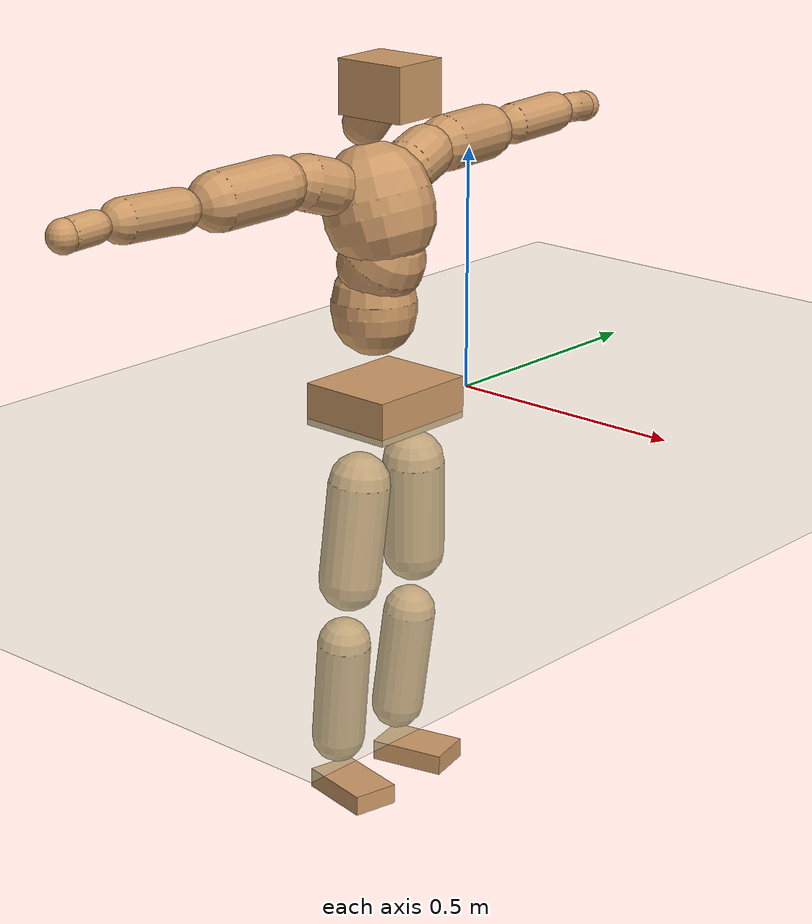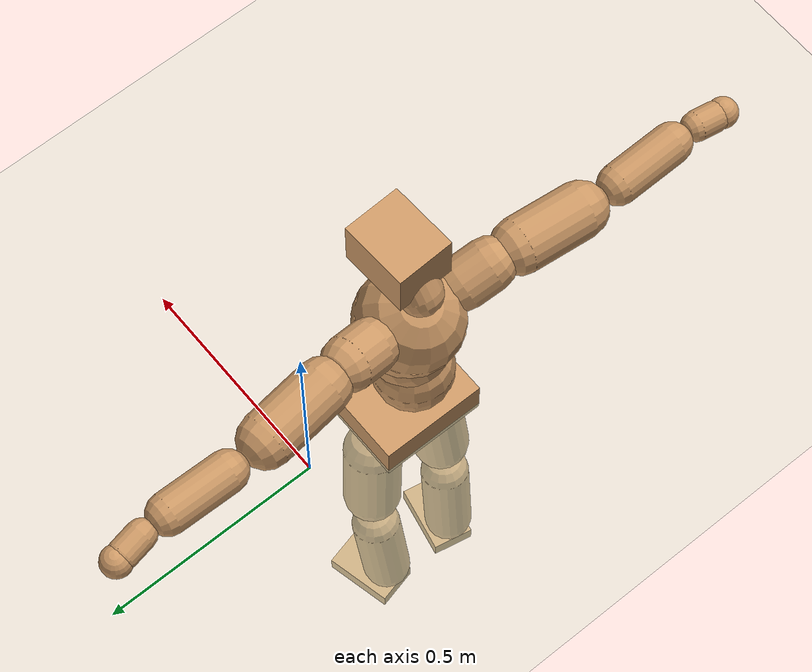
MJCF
<mujoco model="humanoid">
  <compiler coordinate="local" angle="radian"/>
  <default>
    <joint damping="0.0" armature="0.01" stiffness="0.0" limited="true"/>
    <geom conaffinity="1" condim="3" contype="7" margin="0.001" rgba="0.8 0.6 .4 1"/>
  </default>
  <asset>
    <texture type="skybox" builtin="gradient" rgb1=".4 .5 .6" rgb2="0 0 0" width="100" height="100"/>
    <texture builtin="flat" height="1278" mark="cross" markrgb="1 1 1" name="texgeom" random="0.01" rgb1="0.8 0.6 0.4" rgb2="0.8 0.6 0.4" type="cube" width="127"/>
    <texture builtin="checker" height="100" name="texplane" rgb1="0 0 0" rgb2="0.8 0.8 0.8" type="2d" width="100"/>
    <material name="MatPlane" reflectance="0.5" shininess="1" specular="1" texrepeat="60 60" texture="texplane"/>
    <material name="geom" texture="texgeom" texuniform="true"/>
  </asset>
  <worldbody>
    <light cutoff="100" diffuse="1 1 1" dir="-0 0 -1.3" directional="true" exponent="1" pos="0 0 1.3" specular=".1 .1 .1"/>
    <geom conaffinity="1" condim="3" name="floor" pos="0 0 0" rgba="0.8 0.9 0.8 1" size="100 100 .2" type="plane" material="MatPlane"/>
    <body name="Pelvis" pos="-0.0015 -0.2408 0.0412">
      <freejoint name="Pelvis"/>
      <geom type="box" contype="1" conaffinity="1" density="500" pos="-0.0050 0.0000 -0.0132" size="0.0998 0.1198 0.0435" quat="1.0000 0.0000 0.0000 -0.0013" name="Pelvis"/>
      <body name="L_Hip" pos="-0.0001 0.0784 -0.0944">
        <joint name="L_Hip_x" type="hinge" pos="0 0 0" axis="1 0 0" stiffness="800" damping="80" armature="0.02" range="-180.0000 180.0000"/>
        <joint name="L_Hip_y" type="hinge" pos="0 0 0" axis="0 1 0" stiffness="800" damping="80" armature="0.02" range="-180.0000 180.0000"/>
        <joint name="L_Hip_z" type="hinge" pos="0 0 0" axis="0 0 1" stiffness="800" damping="80" armature="0.02" range="-180.0000 180.0000"/>
        <geom type="capsule" contype="1" conaffinity="1" density="500" fromto="-0.0035 0.0044 -0.0674 -0.0142 0.0177 -0.2697" size="0.0632" name="L_Hip"/>
        <body name="L_Knee" pos="-0.0177 0.0221 -0.3372">
          <joint name="L_Knee_x" type="hinge" pos="0 0 0" axis="1 0 0" stiffness="800" damping="80" armature="0.02" range="-180.0000 180.0000"/>
          <joint name="L_Knee_y" type="hinge" pos="0 0 0" axis="0 1 0" stiffness="800" damping="80" armature="0.02" range="-180.0000 180.0000"/>
          <joint name="L_Knee_z" type="hinge" pos="0 0 0" axis="0 0 1" stiffness="800" damping="80" armature="0.02" range="-180.0000 180.0000"/>
          <geom type="capsule" contype="1" conaffinity="1" density="500" fromto="-0.0091 -0.0022 -0.0722 -0.0363 -0.0089 -0.2888" size="0.0542" name="L_Knee"/>
          <body name="L_Ankle" pos="-0.0454 -0.0111 -0.361">
            <joint name="L_Ankle_x" type="hinge" pos="0 0 0" axis="1 0 0" stiffness="800" damping="80" armature="0.02" range="-180.0000 180.0000"/>
            <joint name="L_Ankle_y" type="hinge" pos="0 0 0" axis="0 1 0" stiffness="800" damping="80" armature="0.02" range="-180.0000 180.0000"/>
            <joint name="L_Ankle_z" type="hinge" pos="0 0 0" axis="0 0 1" stiffness="800" damping="80" armature="0.02" range="-180.0000 180.0000"/>
            <geom type="box" contype="1" conaffinity="1" density="500" pos="0.0552 0.0131 -0.0268" size="0.0784 0.0486 0.0206" quat="0.9932 0.0000 0.0000 0.1164" name="L_Ankle"/>
            <body name="L_Toe" pos="0.1104 0.0262 -0.0535">
              <joint name="L_Toe_x" type="hinge" pos="0 0 0" axis="1 0 0" stiffness="500" damping="50" armature="0.02" range="-180.0000 180.0000"/>
              <joint name="L_Toe_y" type="hinge" pos="0 0 0" axis="0 1 0" stiffness="500" damping="50" armature="0.02" range="-180.0000 180.0000"/>
              <joint name="L_Toe_z" type="hinge" pos="0 0 0" axis="0 0 1" stiffness="500" damping="50" armature="0.02" range="-180.0000 180.0000"/>
              <geom type="box" contype="1" conaffinity="1" density="500" pos="0.0000 0.0000 0.0266" size="0.0011 0.0024 0.001" quat="0.9924 0.0000 0.0000 0.1228" name="L_Toe"/>
            </body>
          </body>
        </body>
      </body>
      <body name="R_Hip" pos="0.0031 -0.0758 -0.0956">
        <joint name="R_Hip_x" type="hinge" pos="0 0 0" axis="1 0 0" stiffness="800" damping="80" armature="0.02" range="-180.0000 180.0000"/>
        <joint name="R_Hip_y" type="hinge" pos="0 0 0" axis="0 1 0" stiffness="800" damping="80" armature="0.02" range="-180.0000 180.0000"/>
        <joint name="R_Hip_z" type="hinge" pos="0 0 0" axis="0 0 1" stiffness="800" damping="80" armature="0.02" range="-180.0000 180.0000"/>
        <geom type="capsule" contype="1" conaffinity="1" density="500" fromto="-0.0038 -0.0060 -0.0686 -0.0151 -0.0238 -0.2745" size="0.0625" name="R_Hip"/>
        <body name="R_Knee" pos="-0.0189 -0.0298 -0.3432">
          <joint name="R_Knee_x" type="hinge" pos="0 0 0" axis="1 0 0" stiffness="800" damping="80" armature="0.02" range="-180.0000 180.0000"/>
          <joint name="R_Knee_y" type="hinge" pos="0 0 0" axis="0 1 0" stiffness="800" damping="80" armature="0.02" range="-180.0000 180.0000"/>
          <joint name="R_Knee_z" type="hinge" pos="0 0 0" axis="0 0 1" stiffness="800" damping="80" armature="0.02" range="-180.0000 180.0000"/>
          <geom type="capsule" contype="1" conaffinity="1" density="500" fromto="-0.0087 0.0026 -0.0725 -0.0347 0.0104 -0.2900" size="0.0543" name="R_Knee"/>
          <body name="R_Ankle" pos="-0.0434 0.013 -0.3625">
            <joint name="R_Ankle_x" type="hinge" pos="0 0 0" axis="1 0 0" stiffness="800" damping="80" armature="0.02" range="-180.0000 180.0000"/>
            <joint name="R_Ankle_y" type="hinge" pos="0 0 0" axis="0 1 0" stiffness="800" damping="80" armature="0.02" range="-180.0000 180.0000"/>
            <joint name="R_Ankle_z" type="hinge" pos="0 0 0" axis="0 0 1" stiffness="800" damping="80" armature="0.02" range="-180.0000 180.0000"/>
            <geom type="box" contype="1" conaffinity="1" density="500" pos="0.0575 -0.0117 -0.0232" size="0.0802 0.0475 0.0204" quat="0.9949 0.0000 0.0000 -0.1006" name="R_Ankle"/>
            <body name="R_Toe" pos="0.115 -0.0235 -0.0464">
              <joint name="R_Toe_x" type="hinge" pos="0 0 0" axis="1 0 0" stiffness="500" damping="50" armature="0.02" range="-180.0000 180.0000"/>
              <joint name="R_Toe_y" type="hinge" pos="0 0 0" axis="0 1 0" stiffness="500" damping="50" armature="0.02" range="-180.0000 180.0000"/>
              <joint name="R_Toe_z" type="hinge" pos="0 0 0" axis="0 0 1" stiffness="500" damping="50" armature="0.02" range="-180.0000 180.0000"/>
              <geom type="box" contype="1" conaffinity="1" density="500" pos="0.0000 0.0000 0.0251" size="0.001 0.0024 0.0011" quat="0.9959 0.0000 0.0000 -0.0907" name="R_Toe"/>
            </body>
          </body>
        </body>
      </body>
      <body name="Torso" pos="-0.0327 -0.0026 0.1106">
        <joint name="Torso_x" type="hinge" pos="0 0 0" axis="1 0 0" stiffness="1000" damping="100" armature="0.02" range="-180.0000 180.0000"/>
        <joint name="Torso_y" type="hinge" pos="0 0 0" axis="0 1 0" stiffness="1000" damping="100" armature="0.02" range="-180.0000 180.0000"/>
        <joint name="Torso_z" type="hinge" pos="0 0 0" axis="0 0 1" stiffness="1000" damping="100" armature="0.02" range="-180.0000 180.0000"/>
        <geom type="capsule" contype="1" conaffinity="1" density="500" fromto="-0.0020 0.0026 0.0793 -0.0013 0.0017 0.0528" size="0.0856" name="Torso"/>
        <body name="Spine" pos="-0.0033 0.0043 0.1321">
          <joint name="Spine_x" type="hinge" pos="0 0 0" axis="1 0 0" stiffness="1000" damping="100" armature="0.02" range="-180.0000 180.0000"/>
          <joint name="Spine_y" type="hinge" pos="0 0 0" axis="0 1 0" stiffness="1000" damping="100" armature="0.02" range="-180.0000 180.0000"/>
          <joint name="Spine_z" type="hinge" pos="0 0 0" axis="0 0 1" stiffness="1000" damping="100" armature="0.02" range="-180.0000 180.0000"/>
          <geom type="capsule" contype="1" conaffinity="1" density="500" fromto="0.0214 0.0013 0.0321 0.0143 0.0008 0.0214" size="0.0862" name="Spine"/>
          <body name="Chest" pos="0.0357 0.0021 0.0535">
            <joint name="Chest_x" type="hinge" pos="0 0 0" axis="1 0 0" stiffness="1000" damping="100" armature="0.02" range="-180.0000 180.0000"/>
            <joint name="Chest_y" type="hinge" pos="0 0 0" axis="0 1 0" stiffness="1000" damping="100" armature="0.02" range="-180.0000 180.0000"/>
            <joint name="Chest_z" type="hinge" pos="0 0 0" axis="0 0 1" stiffness="1000" damping="100" armature="0.02" range="-180.0000 180.0000"/>
            <geom type="capsule" contype="1" conaffinity="1" density="500" fromto="-0.0322 -0.0004 0.0977 -0.0215 -0.0003 0.0651" size="0.111" name="Chest"/>
            <body name="Neck" pos="-0.0692 -0.0011 0.2281">
              <joint name="Neck_x" type="hinge" pos="0 0 0" axis="1 0 0" stiffness="500" damping="50" armature="0.02" range="-180.0000 180.0000"/>
              <joint name="Neck_y" type="hinge" pos="0 0 0" axis="0 1 0" stiffness="500" damping="50" armature="0.02" range="-180.0000 180.0000"/>
              <joint name="Neck_z" type="hinge" pos="0 0 0" axis="0 0 1" stiffness="500" damping="50" armature="0.02" range="-180.0000 180.0000"/>
              <geom type="capsule" contype="1" conaffinity="1" density="500" fromto="0.0095 0.0000 0.0122 0.0382 0.0000 0.0486" size="0.045" name="Neck"/>
              <body name="Head" pos="0.0477 0 0.0608">
                <joint name="Head_x" type="hinge" pos="0 0 0" axis="1 0 0" stiffness="500" damping="50" armature="0.02" range="-180.0000 180.0000"/>
                <joint name="Head_y" type="hinge" pos="0 0 0" axis="0 1 0" stiffness="500" damping="50" armature="0.02" range="-180.0000 180.0000"/>
                <joint name="Head_z" type="hinge" pos="0 0 0" axis="0 0 1" stiffness="500" damping="50" armature="0.02" range="-180.0000 180.0000"/>
                <geom type="box" contype="1" conaffinity="1" density="500" pos="0.0249 0.0010 0.0314" size="0.0754 0.0627 0.0545" quat="0.9998 0.0000 0.0000 0.0205" name="Head"/>
              </body>
            </body>
            <body name="L_Thorax" pos="-0.0433 0.089 0.1317">
              <joint name="L_Thorax_x" type="hinge" pos="0 0 0" axis="1 0 0" stiffness="500" damping="50" armature="0.02" range="-180.0000 180.0000"/>
              <joint name="L_Thorax_y" type="hinge" pos="0 0 0" axis="0 1 0" stiffness="500" damping="50" armature="0.02" range="-180.0000 180.0000"/>
              <joint name="L_Thorax_z" type="hinge" pos="0 0 0" axis="0 0 1" stiffness="500" damping="50" armature="0.02" range="-180.0000 180.0000"/>
              <geom type="capsule" contype="1" conaffinity="1" density="500" fromto="-0.0026 0.0195 0.0060 -0.0104 0.0779 0.0238" size="0.0566" name="L_Thorax"/>
              <body name="L_Shoulder" pos="-0.013 0.0974 0.0298">
                <joint name="L_Shoulder_x" type="hinge" pos="0 0 0" axis="1 0 0" stiffness="500" damping="50" armature="0.02" range="-720.0000 720.0000"/>
                <joint name="L_Shoulder_y" type="hinge" pos="0 0 0" axis="0 1 0" stiffness="500" damping="50" armature="0.02" range="-720.0000 720.0000"/>
                <joint name="L_Shoulder_z" type="hinge" pos="0 0 0" axis="0 0 1" stiffness="500" damping="50" armature="0.02" range="-720.0000 720.0000"/>
                <geom type="capsule" contype="1" conaffinity="1" density="500" fromto="-0.0058 0.0489 -0.0009 -0.0230 0.1956 -0.0036" size="0.0573" name="L_Shoulder"/>
                <body name="L_Elbow" pos="-0.0288 0.2445 -0.0045">
                  <joint name="L_Elbow_x" type="hinge" pos="0 0 0" axis="1 0 0" stiffness="500" damping="50" armature="0.02" range="-720.0000 720.0000"/>
                  <joint name="L_Elbow_y" type="hinge" pos="0 0 0" axis="0 1 0" stiffness="500" damping="50" armature="0.02" range="-720.0000 720.0000"/>
                  <joint name="L_Elbow_z" type="hinge" pos="0 0 0" axis="0 0 1" stiffness="500" damping="50" armature="0.02" range="-720.0000 720.0000"/>
                  <geom type="capsule" contype="1" conaffinity="1" density="500" fromto="0.0004 0.0448 0.0014 0.0016 0.1792 0.0057" size="0.0425" name="L_Elbow"/>
                  <body name="L_Wrist" pos="0.002 0.2241 0.0071">
                    <joint name="L_Wrist_x" type="hinge" pos="0 0 0" axis="1 0 0" stiffness="300" damping="30" armature="0.02" range="-180.0000 180.0000"/>
                    <joint name="L_Wrist_y" type="hinge" pos="0 0 0" axis="0 1 0" stiffness="300" damping="30" armature="0.02" range="-180.0000 180.0000"/>
                    <joint name="L_Wrist_z" type="hinge" pos="0 0 0" axis="0 0 1" stiffness="300" damping="30" armature="0.02" range="-180.0000 180.0000"/>
                    <geom type="capsule" contype="1" conaffinity="1" density="500" fromto="-0.0025 0.0160 -0.0019 -0.0102 0.0641 -0.0075" size="0.0311" name="L_Wrist"/>
                    <body name="L_Hand" pos="-0.0127 0.0801 -0.0094">
                      <joint name="L_Hand_x" type="hinge" pos="0 0 0" axis="1 0 0" stiffness="300" damping="30" armature="0.02" range="-180.0000 180.0000"/>
                      <joint name="L_Hand_y" type="hinge" pos="0 0 0" axis="0 1 0" stiffness="300" damping="30" armature="0.02" range="-180.0000 180.0000"/>
                      <joint name="L_Hand_z" type="hinge" pos="0 0 0" axis="0 0 1" stiffness="300" damping="30" armature="0.02" range="-180.0000 180.0000"/>
                      <geom type="sphere" contype="1" conaffinity="1" density="500" size="0.0325" pos="0.0000 0.0000 0.0000" name="L_Hand"/>
                    </body>
                  </body>
                </body>
              </body>
            </body>
            <body name="R_Thorax" pos="-0.0484 -0.09 0.1288">
              <joint name="R_Thorax_x" type="hinge" pos="0 0 0" axis="1 0 0" stiffness="500" damping="50" armature="0.02" range="-180.0000 180.0000"/>
              <joint name="R_Thorax_y" type="hinge" pos="0 0 0" axis="0 1 0" stiffness="500" damping="50" armature="0.02" range="-180.0000 180.0000"/>
              <joint name="R_Thorax_z" type="hinge" pos="0 0 0" axis="0 0 1" stiffness="500" damping="50" armature="0.02" range="-180.0000 180.0000"/>
              <geom type="capsule" contype="1" conaffinity="1" density="500" fromto="-0.0030 -0.0199 0.0064 -0.0119 -0.0797 0.0254" size="0.0554" name="R_Thorax"/>
              <body name="R_Shoulder" pos="-0.0148 -0.0997 0.0318">
                <joint name="R_Shoulder_x" type="hinge" pos="0 0 0" axis="1 0 0" stiffness="500" damping="50" armature="0.02" range="-720.0000 720.0000"/>
                <joint name="R_Shoulder_y" type="hinge" pos="0 0 0" axis="0 1 0" stiffness="500" damping="50" armature="0.02" range="-720.0000 720.0000"/>
                <joint name="R_Shoulder_z" type="hinge" pos="0 0 0" axis="0 0 1" stiffness="500" damping="50" armature="0.02" range="-720.0000 720.0000"/>
                <geom type="capsule" contype="1" conaffinity="1" density="500" fromto="-0.0042 -0.0476 -0.0020 -0.0169 -0.1905 -0.0080" size="0.0585" name="R_Shoulder"/>
                <body name="R_Elbow" pos="-0.0212 -0.2382 -0.01">
                  <joint name="R_Elbow_x" type="hinge" pos="0 0 0" axis="1 0 0" stiffness="500" damping="50" armature="0.02" range="-720.0000 720.0000"/>
                  <joint name="R_Elbow_y" type="hinge" pos="0 0 0" axis="0 1 0" stiffness="500" damping="50" armature="0.02" range="-720.0000 720.0000"/>
                  <joint name="R_Elbow_z" type="hinge" pos="0 0 0" axis="0 0 1" stiffness="500" damping="50" armature="0.02" range="-720.0000 720.0000"/>
                  <geom type="capsule" contype="1" conaffinity="1" density="500" fromto="0.0000 -0.0460 0.0022 0.0002 -0.1839 0.0088" size="0.0428" name="R_Elbow"/>
                  <body name="R_Wrist" pos="0.0002 -0.2299 0.011">
                    <joint name="R_Wrist_x" type="hinge" pos="0 0 0" axis="1 0 0" stiffness="300" damping="30" armature="0.02" range="-180.0000 180.0000"/>
                    <joint name="R_Wrist_y" type="hinge" pos="0 0 0" axis="0 1 0" stiffness="300" damping="30" armature="0.02" range="-180.0000 180.0000"/>
                    <joint name="R_Wrist_z" type="hinge" pos="0 0 0" axis="0 0 1" stiffness="300" damping="30" armature="0.02" range="-180.0000 180.0000"/>
                    <geom type="capsule" contype="1" conaffinity="1" density="500" fromto="-0.0020 -0.0160 -0.0014 -0.0082 -0.0639 -0.0056" size="0.0315" name="R_Wrist"/>
                    <body name="R_Hand" pos="-0.0102 -0.0799 -0.0071">
                      <joint name="R_Hand_x" type="hinge" pos="0 0 0" axis="1 0 0" stiffness="300" damping="30" armature="0.02" range="-180.0000 180.0000"/>
                      <joint name="R_Hand_y" type="hinge" pos="0 0 0" axis="0 1 0" stiffness="300" damping="30" armature="0.02" range="-180.0000 180.0000"/>
                      <joint name="R_Hand_z" type="hinge" pos="0 0 0" axis="0 0 1" stiffness="300" damping="30" armature="0.02" range="-180.0000 180.0000"/>
                      <geom type="sphere" contype="1" conaffinity="1" density="500" size="0.0324" pos="0.0000 0.0000 0.0000" name="R_Hand"/>
                    </body>
                  </body>
                </body>
              </body>
            </body>
          </body>
        </body>
      </body>
    </body>
  </worldbody>
  <actuator>
    <motor name="L_Hip_x" joint="L_Hip_x" gear="500"/>
    <motor name="L_Hip_y" joint="L_Hip_y" gear="500"/>
    <motor name="L_Hip_z" joint="L_Hip_z" gear="500"/>
    <motor name="L_Knee_x" joint="L_Knee_x" gear="500"/>
    <motor name="L_Knee_y" joint="L_Knee_y" gear="500"/>
    <motor name="L_Knee_z" joint="L_Knee_z" gear="500"/>
    <motor name="L_Ankle_x" joint="L_Ankle_x" gear="500"/>
    <motor name="L_Ankle_y" joint="L_Ankle_y" gear="500"/>
    <motor name="L_Ankle_z" joint="L_Ankle_z" gear="500"/>
    <motor name="L_Toe_x" joint="L_Toe_x" gear="500"/>
    <motor name="L_Toe_y" joint="L_Toe_y" gear="500"/>
    <motor name="L_Toe_z" joint="L_Toe_z" gear="500"/>
    <motor name="R_Hip_x" joint="R_Hip_x" gear="500"/>
    <motor name="R_Hip_y" joint="R_Hip_y" gear="500"/>
    <motor name="R_Hip_z" joint="R_Hip_z" gear="500"/>
    <motor name="R_Knee_x" joint="R_Knee_x" gear="500"/>
    <motor name="R_Knee_y" joint="R_Knee_y" gear="500"/>
    <motor name="R_Knee_z" joint="R_Knee_z" gear="500"/>
    <motor name="R_Ankle_x" joint="R_Ankle_x" gear="500"/>
    <motor name="R_Ankle_y" joint="R_Ankle_y" gear="500"/>
    <motor name="R_Ankle_z" joint="R_Ankle_z" gear="500"/>
    <motor name="R_Toe_x" joint="R_Toe_x" gear="500"/>
    <motor name="R_Toe_y" joint="R_Toe_y" gear="500"/>
    <motor name="R_Toe_z" joint="R_Toe_z" gear="500"/>
    <motor name="Torso_x" joint="Torso_x" gear="500"/>
    <motor name="Torso_y" joint="Torso_y" gear="500"/>
    <motor name="Torso_z" joint="Torso_z" gear="500"/>
    <motor name="Spine_x" joint="Spine_x" gear="500"/>
    <motor name="Spine_y" joint="Spine_y" gear="500"/>
    <motor name="Spine_z" joint="Spine_z" gear="500"/>
    <motor name="Chest_x" joint="Chest_x" gear="500"/>
    <motor name="Chest_y" joint="Chest_y" gear="500"/>
    <motor name="Chest_z" joint="Chest_z" gear="500"/>
    <motor name="Neck_x" joint="Neck_x" gear="500"/>
    <motor name="Neck_y" joint="Neck_y" gear="500"/>
    <motor name="Neck_z" joint="Neck_z" gear="500"/>
    <motor name="Head_x" joint="Head_x" gear="500"/>
    <motor name="Head_y" joint="Head_y" gear="500"/>
    <motor name="Head_z" joint="Head_z" gear="500"/>
    <motor name="L_Thorax_x" joint="L_Thorax_x" gear="500"/>
    <motor name="L_Thorax_y" joint="L_Thorax_y" gear="500"/>
    <motor name="L_Thorax_z" joint="L_Thorax_z" gear="500"/>
    <motor name="L_Shoulder_x" joint="L_Shoulder_x" gear="500"/>
    <motor name="L_Shoulder_y" joint="L_Shoulder_y" gear="500"/>
    <motor name="L_Shoulder_z" joint="L_Shoulder_z" gear="500"/>
    <motor name="L_Elbow_x" joint="L_Elbow_x" gear="500"/>
    <motor name="L_Elbow_y" joint="L_Elbow_y" gear="500"/>
    <motor name="L_Elbow_z" joint="L_Elbow_z" gear="500"/>
    <motor name="L_Wrist_x" joint="L_Wrist_x" gear="500"/>
    <motor name="L_Wrist_y" joint="L_Wrist_y" gear="500"/>
    <motor name="L_Wrist_z" joint="L_Wrist_z" gear="500"/>
    <motor name="L_Hand_x" joint="L_Hand_x" gear="500"/>
    <motor name="L_Hand_y" joint="L_Hand_y" gear="500"/>
    <motor name="L_Hand_z" joint="L_Hand_z" gear="500"/>
    <motor name="R_Thorax_x" joint="R_Thorax_x" gear="500"/>
    <motor name="R_Thorax_y" joint="R_Thorax_y" gear="500"/>
    <motor name="R_Thorax_z" joint="R_Thorax_z" gear="500"/>
    <motor name="R_Shoulder_x" joint="R_Shoulder_x" gear="500"/>
    <motor name="R_Shoulder_y" joint="R_Shoulder_y" gear="500"/>
    <motor name="R_Shoulder_z" joint="R_Shoulder_z" gear="500"/>
    <motor name="R_Elbow_x" joint="R_Elbow_x" gear="500"/>
    <motor name="R_Elbow_y" joint="R_Elbow_y" gear="500"/>
    <motor name="R_Elbow_z" joint="R_Elbow_z" gear="500"/>
    <motor name="R_Wrist_x" joint="R_Wrist_x" gear="500"/>
    <motor name="R_Wrist_y" joint="R_Wrist_y" gear="500"/>
    <motor name="R_Wrist_z" joint="R_Wrist_z" gear="500"/>
    <motor name="R_Hand_x" joint="R_Hand_x" gear="500"/>
    <motor name="R_Hand_y" joint="R_Hand_y" gear="500"/>
    <motor name="R_Hand_z" joint="R_Hand_z" gear="500"/>
  </actuator>
  <contact>
    <exclude body1="Torso" body2="Chest"/>
    <exclude body1="Head" body2="Chest"/>
    <exclude body1="R_Knee" body2="R_Toe"/>
    <exclude body1="R_Knee" body2="L_Ankle"/>
    <exclude body1="R_Knee" body2="L_Toe"/>
    <exclude body1="L_Knee" body2="L_Toe"/>
    <exclude body1="L_Knee" body2="R_Ankle"/>
    <exclude body1="L_Knee" body2="R_Toe"/>
    <exclude body1="L_Shoulder" body2="Chest"/>
    <exclude body1="R_Shoulder" body2="Chest"/>
  </contact>
  <sensor/>
  <size njmax="700" nconmax="700"/>
</mujoco>
